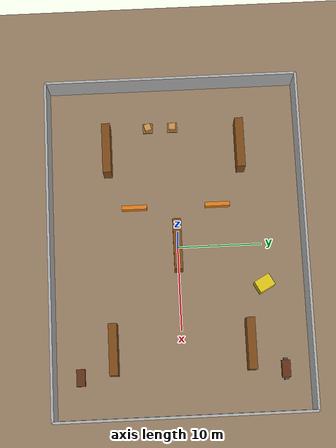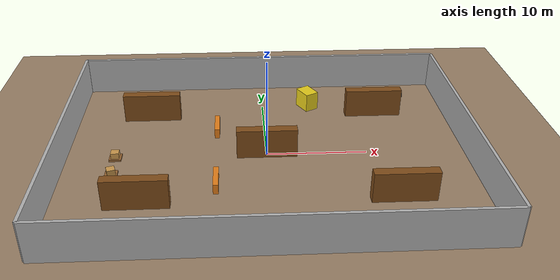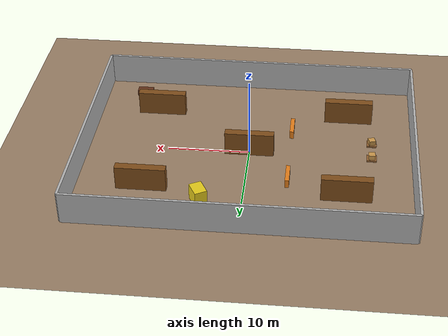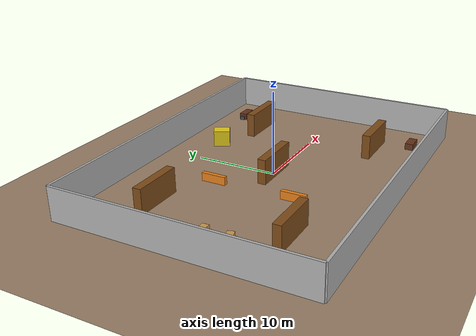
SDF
<?xml version="1.0" encoding="UTF-8"?>
<!--
  Leo Rover — Warehouse Test World (Simplified)
  Basitleştirilmiş depo ortamı - Fuel indirme gerektirmez
  GPS datum: Ankara, Turkey (39.925018N, 32.836956E, 890m)
-->
<sdf version="1.8">
  <world name="leo_warehouse">

    <!-- ── Physics ─────────────────────────────────────────────────── -->
    <physics name="1ms" type="ignored">
      <max_step_size>0.001</max_step_size>
      <real_time_factor>1.0</real_time_factor>
    </physics>

    <!-- ── Plugins ──────────────────────────────────────────────────── -->
    <plugin filename="ignition-gazebo-physics-system"
            name="ignition::gazebo::systems::Physics"/>
    <plugin filename="ignition-gazebo-sensors-system"
            name="ignition::gazebo::systems::Sensors">
      <render_engine>ogre2</render_engine>
    </plugin>
    <plugin filename="ignition-gazebo-scene-broadcaster-system"
            name="ignition::gazebo::systems::SceneBroadcaster"/>
    <plugin filename="ignition-gazebo-user-commands-system"
            name="ignition::gazebo::systems::UserCommands"/>
    <plugin filename="gz-sim-imu-system"
            name="gz::sim::systems::Imu"/>
    <plugin filename="ignition-gazebo-navsat-system"
            name="ignition::gazebo::systems::NavSat"/>

    <!-- ── GPS datum: Ankara ─────────────────────────────────────────── -->
    <spherical_coordinates>
      <surface_model>EARTH_WGS84</surface_model>
      <world_frame_orientation>ENU</world_frame_orientation>
      <latitude_deg>39.925018</latitude_deg>
      <longitude_deg>32.836956</longitude_deg>
      <elevation>890</elevation>
      <heading_deg>0</heading_deg>
    </spherical_coordinates>

    <!-- ── Lighting ─────────────────────────────────────────────────── -->
    <light name="sun" type="directional">
      <cast_shadows>true</cast_shadows>
      <pose>0 0 10 0 0 0</pose>
      <diffuse>0.8 0.8 0.8 1</diffuse>
      <specular>0.2 0.2 0.2 1</specular>
      <attenuation>
        <range>1000</range>
        <constant>0.9</constant>
        <linear>0.01</linear>
        <quadratic>0.001</quadratic>
      </attenuation>
      <direction>-0.5 0.1 -0.9</direction>
    </light>

    <!-- ── Ground plane (kum/toprak rengi) ──────────────────────────── -->
    <model name="ground_plane">
      <static>true</static>
      <link name="link">
        <collision name="collision">
          <geometry>
            <plane>
              <normal>0 0 1</normal>
              <size>100 100</size>
            </plane>
          </geometry>
          <surface>
            <friction>
              <ode><mu>0.8</mu><mu2>0.8</mu2></ode>
            </friction>
          </surface>
        </collision>
        <visual name="visual">
          <geometry>
            <plane>
              <normal>0 0 1</normal>
              <size>100 100</size>
            </plane>
          </geometry>
          <material>
            <ambient>0.6 0.5 0.4 1</ambient>
            <diffuse>0.6 0.5 0.4 1</diffuse>
            <specular>0.2 0.2 0.2 1</specular>
          </material>
        </visual>
      </link>
    </model>

    <!-- ── Warehouse Building (ana bina) ───────────────────────────── -->
    <!-- 40x30m bina, duvarlar 0.3m kalınlığında, 4m yükseklik -->

    <!-- Kuzey duvarı -->
    <model name="wall_north">
      <static>true</static>
      <pose>0 15 2 0 0 0</pose>
      <link name="link">
        <collision name="collision">
          <geometry><box><size>40 0.3 4</size></box></geometry>
        </collision>
        <visual name="visual">
          <geometry><box><size>40 0.3 4</size></box></geometry>
          <material><ambient>0.7 0.7 0.7 1</ambient><diffuse>0.7 0.7 0.7 1</diffuse></material>
        </visual>
      </link>
    </model>

    <!-- Güney duvarı -->
    <model name="wall_south">
      <static>true</static>
      <pose>0 -15 2 0 0 0</pose>
      <link name="link">
        <collision name="collision">
          <geometry><box><size>40 0.3 4</size></box></geometry>
        </collision>
        <visual name="visual">
          <geometry><box><size>40 0.3 4</size></box></geometry>
          <material><ambient>0.7 0.7 0.7 1</ambient><diffuse>0.7 0.7 0.7 1</diffuse></material>
        </visual>
      </link>
    </model>

    <!-- Doğu duvarı -->
    <model name="wall_east">
      <static>true</static>
      <pose>20 0 2 0 0 1.5708</pose>
      <link name="link">
        <collision name="collision">
          <geometry><box><size>30 0.3 4</size></box></geometry>
        </collision>
        <visual name="visual">
          <geometry><box><size>30 0.3 4</size></box></geometry>
          <material><ambient>0.7 0.7 0.7 1</ambient><diffuse>0.7 0.7 0.7 1</diffuse></material>
        </visual>
      </link>
    </model>

    <!-- Batı duvarı -->
    <model name="wall_west">
      <static>true</static>
      <pose>-20 0 2 0 0 1.5708</pose>
      <link name="link">
        <collision name="collision">
          <geometry><box><size>30 0.3 4</size></box></geometry>
        </collision>
        <visual name="visual">
          <geometry><box><size>30 0.3 4</size></box></geometry>
          <material><ambient>0.7 0.7 0.7 1</ambient><diffuse>0.7 0.7 0.7 1</diffuse></material>
        </visual>
      </link>
    </model>

    <!-- ── Raflar (shelf rows) ──────────────────────────────────────── -->
    <!-- Raf 1: Kuzeybatı -->
    <model name="shelf_1">
      <static>true</static>
      <pose>-12 8 1.5 0 0 0</pose>
      <link name="link">
        <collision name="collision">
          <geometry><box><size>6 1 3</size></box></geometry>
        </collision>
        <visual name="visual">
          <geometry><box><size>6 1 3</size></box></geometry>
          <material><ambient>0.5 0.3 0.1 1</ambient><diffuse>0.5 0.3 0.1 1</diffuse></material>
        </visual>
      </link>
    </model>

    <!-- Raf 2: Kuzeydoğu -->
    <model name="shelf_2">
      <static>true</static>
      <pose>12 8 1.5 0 0 0</pose>
      <link name="link">
        <collision name="collision">
          <geometry><box><size>6 1 3</size></box></geometry>
        </collision>
        <visual name="visual">
          <geometry><box><size>6 1 3</size></box></geometry>
          <material><ambient>0.5 0.3 0.1 1</ambient><diffuse>0.5 0.3 0.1 1</diffuse></material>
        </visual>
      </link>
    </model>

    <!-- Raf 3: Orta -->
    <model name="shelf_3">
      <static>true</static>
      <pose>0 0 1.5 0 0 0</pose>
      <link name="link">
        <collision name="collision">
          <geometry><box><size>6 1 3</size></box></geometry>
        </collision>
        <visual name="visual">
          <geometry><box><size>6 1 3</size></box></geometry>
          <material><ambient>0.5 0.3 0.1 1</ambient><diffuse>0.5 0.3 0.1 1</diffuse></material>
        </visual>
      </link>
    </model>

    <!-- Raf 4: Güneybatı -->
    <model name="shelf_4">
      <static>true</static>
      <pose>-12 -8 1.5 0 0 0</pose>
      <link name="link">
        <collision name="collision">
          <geometry><box><size>6 1 3</size></box></geometry>
        </collision>
        <visual name="visual">
          <geometry><box><size>6 1 3</size></box></geometry>
          <material><ambient>0.5 0.3 0.1 1</ambient><diffuse>0.5 0.3 0.1 1</diffuse></material>
        </visual>
      </link>
    </model>

    <!-- Raf 5: Güneydoğu -->
    <model name="shelf_5">
      <static>true</static>
      <pose>12 -8 1.5 0 0 0</pose>
      <link name="link">
        <collision name="collision">
          <geometry><box><size>6 1 3</size></box></geometry>
        </collision>
        <visual name="visual">
          <geometry><box><size>6 1 3</size></box></geometry>
          <material><ambient>0.5 0.3 0.1 1</ambient><diffuse>0.5 0.3 0.1 1</diffuse></material>
        </visual>
      </link>
    </model>

    <!-- ── Masalar ──────────────────────────────────────────────────── -->
    <!-- Masa 1: Ofis alanı -->
    <model name="table_1">
      <static>true</static>
      <pose>15 12 0.4 0 0 0</pose>
      <link name="link">
        <collision name="collision">
          <geometry><box><size>2 1 0.8</size></box></geometry>
        </collision>
        <visual name="visual">
          <geometry><box><size>2 1 0.8</size></box></geometry>
          <material><ambient>0.4 0.2 0.1 1</ambient><diffuse>0.4 0.2 0.1 1</diffuse></material>
        </visual>
      </link>
    </model>

    <!-- Masa 2: Yemek alanı -->
    <model name="table_2">
      <static>true</static>
      <pose>15 -12 0.4 0 0 0</pose>
      <link name="link">
        <collision name="collision">
          <geometry><box><size>2 1 0.8</size></box></geometry>
        </collision>
        <visual name="visual">
          <geometry><box><size>2 1 0.8</size></box></geometry>
          <material><ambient>0.4 0.2 0.1 1</ambient><diffuse>0.4 0.2 0.1 1</diffuse></material>
        </visual>
      </link>
    </model>

    <!-- ── Sandalyeler ──────────────────────────────────────────────── -->
    <model name="chair_1">
      <static>true</static>
      <pose>16 12 0.25 0 0 0</pose>
      <link name="link">
        <collision name="collision">
          <geometry><box><size>0.5 0.5 0.5</size></box></geometry>
        </collision>
        <visual name="visual">
          <geometry><box><size>0.5 0.5 0.5</size></box></geometry>
          <material><ambient>0.3 0.3 0.3 1</ambient><diffuse>0.3 0.3 0.3 1</diffuse></material>
        </visual>
      </link>
    </model>

    <model name="chair_2">
      <static>true</static>
      <pose>14 12 0.25 0 0 3.14</pose>
      <link name="link">
        <collision name="collision">
          <geometry><box><size>0.5 0.5 0.5</size></box></geometry>
        </collision>
        <visual name="visual">
          <geometry><box><size>0.5 0.5 0.5</size></box></geometry>
          <material><ambient>0.3 0.3 0.3 1</ambient><diffuse>0.3 0.3 0.3 1</diffuse></material>
        </visual>
      </link>
    </model>

    <!-- ── Bariyerler (navigation challenge) ────────────────────────── -->
    <model name="barrier_1">
      <static>true</static>
      <pose>-5 5 0.5 0 0 1.57</pose>
      <link name="link">
        <collision name="collision">
          <geometry><box><size>3 0.5 1</size></box></geometry>
        </collision>
        <visual name="visual">
          <geometry><box><size>3 0.5 1</size></box></geometry>
          <material><ambient>0.9 0.5 0.1 1</ambient><diffuse>0.9 0.5 0.1 1</diffuse></material>
        </visual>
      </link>
    </model>

    <model name="barrier_2">
      <static>true</static>
      <pose>-5 -5 0.5 0 0 1.57</pose>
      <link name="link">
        <collision name="collision">
          <geometry><box><size>3 0.5 1</size></box></geometry>
        </collision>
        <visual name="visual">
          <geometry><box><size>3 0.5 1</size></box></geometry>
          <material><ambient>0.9 0.5 0.1 1</ambient><diffuse>0.9 0.5 0.1 1</diffuse></material>
        </visual>
      </link>
    </model>

    <!-- ── Paletler ─────────────────────────────────────────────────── -->
    <model name="pallet_1">
      <static>true</static>
      <pose>-15 0 0.1 0 0 0</pose>
      <link name="link">
        <collision name="collision">
          <geometry><box><size>1.2 1.2 0.2</size></box></geometry>
        </collision>
        <visual name="visual">
          <geometry><box><size>1.2 1.2 0.2</size></box></geometry>
          <material><ambient>0.6 0.4 0.2 1</ambient><diffuse>0.6 0.4 0.2 1</diffuse></material>
        </visual>
      </link>
    </model>

    <model name="pallet_2">
      <static>true</static>
      <pose>-15 -3 0.1 0 0 0</pose>
      <link name="link">
        <collision name="collision">
          <geometry><box><size>1.2 1.2 0.2</size></box></geometry>
        </collision>
        <visual name="visual">
          <geometry><box><size>1.2 1.2 0.2</size></box></geometry>
          <material><ambient>0.6 0.4 0.2 1</ambient><diffuse>0.6 0.4 0.2 1</diffuse></material>
        </visual>
      </link>
    </model>

    <!-- ── Kutular (paletlerin üzerinde) ────────────────────────────── -->
    <model name="box_1">
      <static>true</static>
      <pose>-15 0 0.5 0 0 0</pose>
      <link name="link">
        <collision name="collision">
          <geometry><box><size>0.8 0.8 0.6</size></box></geometry>
        </collision>
        <visual name="visual">
          <geometry><box><size>0.8 0.8 0.6</size></box></geometry>
          <material><ambient>0.8 0.6 0.3 1</ambient><diffuse>0.8 0.6 0.3 1</diffuse></material>
        </visual>
      </link>
    </model>

    <model name="box_2">
      <static>true</static>
      <pose>-15 -3 0.5 0 0 0.3</pose>
      <link name="link">
        <collision name="collision">
          <geometry><box><size>0.8 0.8 0.6</size></box></geometry>
        </collision>
        <visual name="visual">
          <geometry><box><size>0.8 0.8 0.6</size></box></geometry>
          <material><ambient>0.8 0.6 0.3 1</ambient><diffuse>0.8 0.6 0.3 1</diffuse></material>
        </visual>
      </link>
    </model>

    <!-- ── Forklift (sabit engel) ───────────────────────────────────── -->
    <model name="forklift">
      <static>true</static>
      <pose>5 10 1 0 0 0.5</pose>
      <link name="link">
        <collision name="collision">
          <geometry><box><size>1.5 2 2</size></box></geometry>
        </collision>
        <visual name="visual">
          <geometry><box><size>1.5 2 2</size></box></geometry>
          <material><ambient>0.9 0.8 0.1 1</ambient><diffuse>0.9 0.8 0.1 1</diffuse></material>
        </visual>
      </link>
    </model>

  </world>
</sdf>
